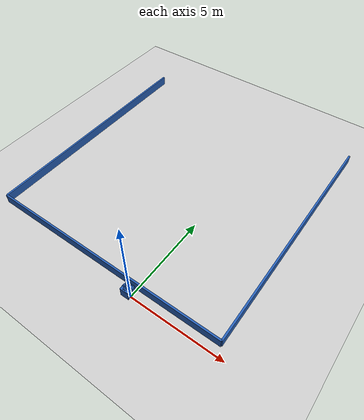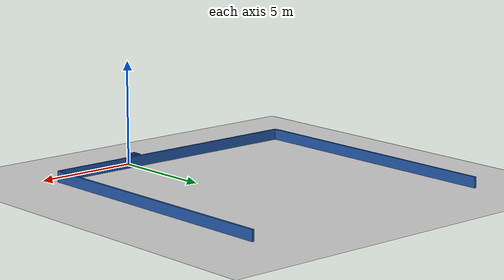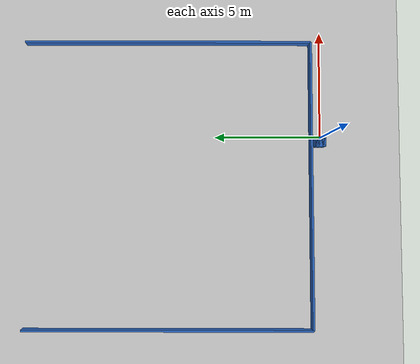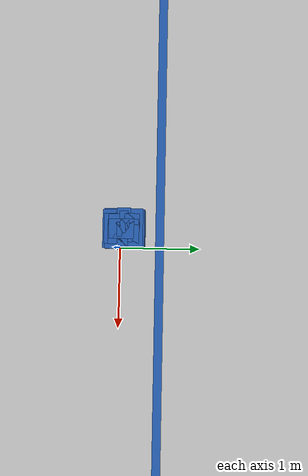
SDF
<?xml version="1.0" ?>
    <sdf version="1.5">
      <world name="default">
        <!-- A global light source -->
        <include>
          <uri>model://sun</uri>
        </include>
        <!-- A ground plane -->
        <include>
          <uri>model://ground_plane</uri>
        </include>

    <model name='libopen_space_final_T2B_79_14'>
      <static>1</static>
      <pose frame=''>-0.225000 0.075000 0.000000 0.000000 0.000000 0.000000</pose>
      <link name='link'>
        <inertial>
          <mass>1</mass>
          <inertia>
            <ixx>0.145833</ixx>
            <ixy>0</ixy>
            <ixz>0</ixz>
            <iyy>0.145833</iyy>
            <iyz>0</iyz>
            <izz>0.125</izz>
          </inertia>
        </inertial>
        <collision name='collision'>
          <geometry>
            <box>
              <size>0.45 0.49 1</size>
            </box>
          </geometry>
          <max_contacts>10</max_contacts>
          <surface>
            <contact>
              <ode/>
            </contact>
            <bounce/>
            <friction>
              <torsional>
                <ode/>
              </torsional>
              <ode/>
            </friction>
          </surface>
        </collision>
        <visual name='visual'>
          <geometry>
            <box>
              <size>0.45 0.49 1</size>
            </box>
          </geometry>
	    <material>
              <ambient>0.152000 0.379000 0.720000 1</ambient>
	      <diffuse>0.152000 0.379000 0.720000 1</diffuse>
          </material>
          <material>
            <script>
              <name>Gazebo/Grey</name>
              <uri>file://media/materials/scripts/gazebo.material</uri>
            </script>
          </material>
        </visual>
        <self_collide>0</self_collide>
        <kinematic>0</kinematic>
        <gravity>1</gravity>
      </link>
      <plugin name='libopen_space_final_T2B_79_14' filename='libopen_space_final_T2B_79_14.so'/>
    </model>

    <model name='libopen_space_final_T2B_99_64'>
      <static>1</static>
      <pose frame=''>-0.225000 0.075000 0.000000 0.000000 0.000000 0.000000</pose>
      <link name='link'>
        <inertial>
          <mass>1</mass>
          <inertia>
            <ixx>0.145833</ixx>
            <ixy>0</ixy>
            <ixz>0</ixz>
            <iyy>0.145833</iyy>
            <iyz>0</iyz>
            <izz>0.125</izz>
          </inertia>
        </inertial>
        <collision name='collision'>
          <geometry>
            <box>
              <size>0.23 0.35 1</size>
            </box>
          </geometry>
          <max_contacts>10</max_contacts>
          <surface>
            <contact>
              <ode/>
            </contact>
            <bounce/>
            <friction>
              <torsional>
                <ode/>
              </torsional>
              <ode/>
            </friction>
          </surface>
        </collision>
        <visual name='visual'>
          <geometry>
            <box>
              <size>0.23 0.35 1</size>
            </box>
          </geometry>
	    <material>
              <ambient>0.152000 0.379000 0.720000 1</ambient>
	      <diffuse>0.152000 0.379000 0.720000 1</diffuse>
          </material>
          <material>
            <script>
              <name>Gazebo/Grey</name>
              <uri>file://media/materials/scripts/gazebo.material</uri>
            </script>
          </material>
        </visual>
        <self_collide>0</self_collide>
        <kinematic>0</kinematic>
        <gravity>1</gravity>
      </link>
      <plugin name='libopen_space_final_T2B_99_64' filename='libopen_space_final_T2B_99_64.so'/>
    </model>

    <model name='libopen_space_final_T2B_55_44'>
      <static>1</static>
      <pose frame=''>-0.225000 0.075000 0.000000 0.000000 0.000000 0.000000</pose>
      <link name='link'>
        <inertial>
          <mass>1</mass>
          <inertia>
            <ixx>0.145833</ixx>
            <ixy>0</ixy>
            <ixz>0</ixz>
            <iyy>0.145833</iyy>
            <iyz>0</iyz>
            <izz>0.125</izz>
          </inertia>
        </inertial>
        <collision name='collision'>
          <geometry>
            <box>
              <size>0.47 0.45 1</size>
            </box>
          </geometry>
          <max_contacts>10</max_contacts>
          <surface>
            <contact>
              <ode/>
            </contact>
            <bounce/>
            <friction>
              <torsional>
                <ode/>
              </torsional>
              <ode/>
            </friction>
          </surface>
        </collision>
        <visual name='visual'>
          <geometry>
            <box>
              <size>0.47 0.45 1</size>
            </box>
          </geometry>
	    <material>
              <ambient>0.152000 0.379000 0.720000 1</ambient>
	      <diffuse>0.152000 0.379000 0.720000 1</diffuse>
          </material>
          <material>
            <script>
              <name>Gazebo/Grey</name>
              <uri>file://media/materials/scripts/gazebo.material</uri>
            </script>
          </material>
        </visual>
        <self_collide>0</self_collide>
        <kinematic>0</kinematic>
        <gravity>1</gravity>
      </link>
      <plugin name='libopen_space_final_T2B_55_44' filename='libopen_space_final_T2B_55_44.so'/>
    </model>

    <model name='libopen_space_final_T2B_125_48'>
      <static>1</static>
      <pose frame=''>-0.225000 0.075000 0.000000 0.000000 0.000000 0.000000</pose>
      <link name='link'>
        <inertial>
          <mass>1</mass>
          <inertia>
            <ixx>0.145833</ixx>
            <ixy>0</ixy>
            <ixz>0</ixz>
            <iyy>0.145833</iyy>
            <iyz>0</iyz>
            <izz>0.125</izz>
          </inertia>
        </inertial>
        <collision name='collision'>
          <geometry>
            <box>
              <size>0.35 0.46 1</size>
            </box>
          </geometry>
          <max_contacts>10</max_contacts>
          <surface>
            <contact>
              <ode/>
            </contact>
            <bounce/>
            <friction>
              <torsional>
                <ode/>
              </torsional>
              <ode/>
            </friction>
          </surface>
        </collision>
        <visual name='visual'>
          <geometry>
            <box>
              <size>0.35 0.46 1</size>
            </box>
          </geometry>
	    <material>
              <ambient>0.152000 0.379000 0.720000 1</ambient>
	      <diffuse>0.152000 0.379000 0.720000 1</diffuse>
          </material>
          <material>
            <script>
              <name>Gazebo/Grey</name>
              <uri>file://media/materials/scripts/gazebo.material</uri>
            </script>
          </material>
        </visual>
        <self_collide>0</self_collide>
        <kinematic>0</kinematic>
        <gravity>1</gravity>
      </link>
      <plugin name='libopen_space_final_T2B_125_48' filename='libopen_space_final_T2B_125_48.so'/>
    </model>

    <model name='libopen_space_final_T2B_118_50'>
      <static>1</static>
      <pose frame=''>-0.225000 0.075000 0.000000 0.000000 0.000000 0.000000</pose>
      <link name='link'>
        <inertial>
          <mass>1</mass>
          <inertia>
            <ixx>0.145833</ixx>
            <ixy>0</ixy>
            <ixz>0</ixz>
            <iyy>0.145833</iyy>
            <iyz>0</iyz>
            <izz>0.125</izz>
          </inertia>
        </inertial>
        <collision name='collision'>
          <geometry>
            <box>
              <size>0.49 0.16 1</size>
            </box>
          </geometry>
          <max_contacts>10</max_contacts>
          <surface>
            <contact>
              <ode/>
            </contact>
            <bounce/>
            <friction>
              <torsional>
                <ode/>
              </torsional>
              <ode/>
            </friction>
          </surface>
        </collision>
        <visual name='visual'>
          <geometry>
            <box>
              <size>0.49 0.16 1</size>
            </box>
          </geometry>
	    <material>
              <ambient>0.152000 0.379000 0.720000 1</ambient>
	      <diffuse>0.152000 0.379000 0.720000 1</diffuse>
          </material>
          <material>
            <script>
              <name>Gazebo/Grey</name>
              <uri>file://media/materials/scripts/gazebo.material</uri>
            </script>
          </material>
        </visual>
        <self_collide>0</self_collide>
        <kinematic>0</kinematic>
        <gravity>1</gravity>
      </link>
      <plugin name='libopen_space_final_T2B_118_50' filename='libopen_space_final_T2B_118_50.so'/>
    </model>

    <model name='libopen_space_final_T2B_147_27'>
      <static>1</static>
      <pose frame=''>-0.225000 0.075000 0.000000 0.000000 0.000000 0.000000</pose>
      <link name='link'>
        <inertial>
          <mass>1</mass>
          <inertia>
            <ixx>0.145833</ixx>
            <ixy>0</ixy>
            <ixz>0</ixz>
            <iyy>0.145833</iyy>
            <iyz>0</iyz>
            <izz>0.125</izz>
          </inertia>
        </inertial>
        <collision name='collision'>
          <geometry>
            <box>
              <size>0.36 0.37 1</size>
            </box>
          </geometry>
          <max_contacts>10</max_contacts>
          <surface>
            <contact>
              <ode/>
            </contact>
            <bounce/>
            <friction>
              <torsional>
                <ode/>
              </torsional>
              <ode/>
            </friction>
          </surface>
        </collision>
        <visual name='visual'>
          <geometry>
            <box>
              <size>0.36 0.37 1</size>
            </box>
          </geometry>
	    <material>
              <ambient>0.152000 0.379000 0.720000 1</ambient>
	      <diffuse>0.152000 0.379000 0.720000 1</diffuse>
          </material>
          <material>
            <script>
              <name>Gazebo/Grey</name>
              <uri>file://media/materials/scripts/gazebo.material</uri>
            </script>
          </material>
        </visual>
        <self_collide>0</self_collide>
        <kinematic>0</kinematic>
        <gravity>1</gravity>
      </link>
      <plugin name='libopen_space_final_T2B_147_27' filename='libopen_space_final_T2B_147_27.so'/>
    </model>

    <model name='libopen_space_final_T2B_120_90'>
      <static>1</static>
      <pose frame=''>-0.225000 0.075000 0.000000 0.000000 0.000000 0.000000</pose>
      <link name='link'>
        <inertial>
          <mass>1</mass>
          <inertia>
            <ixx>0.145833</ixx>
            <ixy>0</ixy>
            <ixz>0</ixz>
            <iyy>0.145833</iyy>
            <iyz>0</iyz>
            <izz>0.125</izz>
          </inertia>
        </inertial>
        <collision name='collision'>
          <geometry>
            <box>
              <size>0.18 0.16 1</size>
            </box>
          </geometry>
          <max_contacts>10</max_contacts>
          <surface>
            <contact>
              <ode/>
            </contact>
            <bounce/>
            <friction>
              <torsional>
                <ode/>
              </torsional>
              <ode/>
            </friction>
          </surface>
        </collision>
        <visual name='visual'>
          <geometry>
            <box>
              <size>0.18 0.16 1</size>
            </box>
          </geometry>
	    <material>
              <ambient>0.152000 0.379000 0.720000 1</ambient>
	      <diffuse>0.152000 0.379000 0.720000 1</diffuse>
          </material>
          <material>
            <script>
              <name>Gazebo/Grey</name>
              <uri>file://media/materials/scripts/gazebo.material</uri>
            </script>
          </material>
        </visual>
        <self_collide>0</self_collide>
        <kinematic>0</kinematic>
        <gravity>1</gravity>
      </link>
      <plugin name='libopen_space_final_T2B_120_90' filename='libopen_space_final_T2B_120_90.so'/>
    </model>

    <model name='libopen_space_final_T2B_134_32'>
      <static>1</static>
      <pose frame=''>-0.225000 0.075000 0.000000 0.000000 0.000000 0.000000</pose>
      <link name='link'>
        <inertial>
          <mass>1</mass>
          <inertia>
            <ixx>0.145833</ixx>
            <ixy>0</ixy>
            <ixz>0</ixz>
            <iyy>0.145833</iyy>
            <iyz>0</iyz>
            <izz>0.125</izz>
          </inertia>
        </inertial>
        <collision name='collision'>
          <geometry>
            <box>
              <size>0.42 0.10 1</size>
            </box>
          </geometry>
          <max_contacts>10</max_contacts>
          <surface>
            <contact>
              <ode/>
            </contact>
            <bounce/>
            <friction>
              <torsional>
                <ode/>
              </torsional>
              <ode/>
            </friction>
          </surface>
        </collision>
        <visual name='visual'>
          <geometry>
            <box>
              <size>0.42 0.10 1</size>
            </box>
          </geometry>
	    <material>
              <ambient>0.152000 0.379000 0.720000 1</ambient>
	      <diffuse>0.152000 0.379000 0.720000 1</diffuse>
          </material>
          <material>
            <script>
              <name>Gazebo/Grey</name>
              <uri>file://media/materials/scripts/gazebo.material</uri>
            </script>
          </material>
        </visual>
        <self_collide>0</self_collide>
        <kinematic>0</kinematic>
        <gravity>1</gravity>
      </link>
      <plugin name='libopen_space_final_T2B_134_32' filename='libopen_space_final_T2B_134_32.so'/>
    </model>

    <model name='libopen_space_final_T2B_125_59'>
      <static>1</static>
      <pose frame=''>-0.225000 0.075000 0.000000 0.000000 0.000000 0.000000</pose>
      <link name='link'>
        <inertial>
          <mass>1</mass>
          <inertia>
            <ixx>0.145833</ixx>
            <ixy>0</ixy>
            <ixz>0</ixz>
            <iyy>0.145833</iyy>
            <iyz>0</iyz>
            <izz>0.125</izz>
          </inertia>
        </inertial>
        <collision name='collision'>
          <geometry>
            <box>
              <size>0.35 0.36 1</size>
            </box>
          </geometry>
          <max_contacts>10</max_contacts>
          <surface>
            <contact>
              <ode/>
            </contact>
            <bounce/>
            <friction>
              <torsional>
                <ode/>
              </torsional>
              <ode/>
            </friction>
          </surface>
        </collision>
        <visual name='visual'>
          <geometry>
            <box>
              <size>0.35 0.36 1</size>
            </box>
          </geometry>
	    <material>
              <ambient>0.152000 0.379000 0.720000 1</ambient>
	      <diffuse>0.152000 0.379000 0.720000 1</diffuse>
          </material>
          <material>
            <script>
              <name>Gazebo/Grey</name>
              <uri>file://media/materials/scripts/gazebo.material</uri>
            </script>
          </material>
        </visual>
        <self_collide>0</self_collide>
        <kinematic>0</kinematic>
        <gravity>1</gravity>
      </link>
      <plugin name='libopen_space_final_T2B_125_59' filename='libopen_space_final_T2B_125_59.so'/>
    </model>

    <model name='libopen_space_final_T2B_77_65'>
      <static>1</static>
      <pose frame=''>-0.225000 0.075000 0.000000 0.000000 0.000000 0.000000</pose>
      <link name='link'>
        <inertial>
          <mass>1</mass>
          <inertia>
            <ixx>0.145833</ixx>
            <ixy>0</ixy>
            <ixz>0</ixz>
            <iyy>0.145833</iyy>
            <iyz>0</iyz>
            <izz>0.125</izz>
          </inertia>
        </inertial>
        <collision name='collision'>
          <geometry>
            <box>
              <size>0.35 0.39 1</size>
            </box>
          </geometry>
          <max_contacts>10</max_contacts>
          <surface>
            <contact>
              <ode/>
            </contact>
            <bounce/>
            <friction>
              <torsional>
                <ode/>
              </torsional>
              <ode/>
            </friction>
          </surface>
        </collision>
        <visual name='visual'>
          <geometry>
            <box>
              <size>0.35 0.39 1</size>
            </box>
          </geometry>
	    <material>
              <ambient>0.152000 0.379000 0.720000 1</ambient>
	      <diffuse>0.152000 0.379000 0.720000 1</diffuse>
          </material>
          <material>
            <script>
              <name>Gazebo/Grey</name>
              <uri>file://media/materials/scripts/gazebo.material</uri>
            </script>
          </material>
        </visual>
        <self_collide>0</self_collide>
        <kinematic>0</kinematic>
        <gravity>1</gravity>
      </link>
      <plugin name='libopen_space_final_T2B_77_65' filename='libopen_space_final_T2B_77_65.so'/>
    </model>

    <model name='libopen_space_final_T2B_127_53'>
      <static>1</static>
      <pose frame=''>-0.225000 0.075000 0.000000 0.000000 0.000000 0.000000</pose>
      <link name='link'>
        <inertial>
          <mass>1</mass>
          <inertia>
            <ixx>0.145833</ixx>
            <ixy>0</ixy>
            <ixz>0</ixz>
            <iyy>0.145833</iyy>
            <iyz>0</iyz>
            <izz>0.125</izz>
          </inertia>
        </inertial>
        <collision name='collision'>
          <geometry>
            <box>
              <size>0.31 0.21 1</size>
            </box>
          </geometry>
          <max_contacts>10</max_contacts>
          <surface>
            <contact>
              <ode/>
            </contact>
            <bounce/>
            <friction>
              <torsional>
                <ode/>
              </torsional>
              <ode/>
            </friction>
          </surface>
        </collision>
        <visual name='visual'>
          <geometry>
            <box>
              <size>0.31 0.21 1</size>
            </box>
          </geometry>
	    <material>
              <ambient>0.152000 0.379000 0.720000 1</ambient>
	      <diffuse>0.152000 0.379000 0.720000 1</diffuse>
          </material>
          <material>
            <script>
              <name>Gazebo/Grey</name>
              <uri>file://media/materials/scripts/gazebo.material</uri>
            </script>
          </material>
        </visual>
        <self_collide>0</self_collide>
        <kinematic>0</kinematic>
        <gravity>1</gravity>
      </link>
      <plugin name='libopen_space_final_T2B_127_53' filename='libopen_space_final_T2B_127_53.so'/>
    </model>

    <model name='libopen_space_final_T2B_125_67'>
      <static>1</static>
      <pose frame=''>-0.225000 0.075000 0.000000 0.000000 0.000000 0.000000</pose>
      <link name='link'>
        <inertial>
          <mass>1</mass>
          <inertia>
            <ixx>0.145833</ixx>
            <ixy>0</ixy>
            <ixz>0</ixz>
            <iyy>0.145833</iyy>
            <iyz>0</iyz>
            <izz>0.125</izz>
          </inertia>
        </inertial>
        <collision name='collision'>
          <geometry>
            <box>
              <size>0.23 0.24 1</size>
            </box>
          </geometry>
          <max_contacts>10</max_contacts>
          <surface>
            <contact>
              <ode/>
            </contact>
            <bounce/>
            <friction>
              <torsional>
                <ode/>
              </torsional>
              <ode/>
            </friction>
          </surface>
        </collision>
        <visual name='visual'>
          <geometry>
            <box>
              <size>0.23 0.24 1</size>
            </box>
          </geometry>
	    <material>
              <ambient>0.152000 0.379000 0.720000 1</ambient>
	      <diffuse>0.152000 0.379000 0.720000 1</diffuse>
          </material>
          <material>
            <script>
              <name>Gazebo/Grey</name>
              <uri>file://media/materials/scripts/gazebo.material</uri>
            </script>
          </material>
        </visual>
        <self_collide>0</self_collide>
        <kinematic>0</kinematic>
        <gravity>1</gravity>
      </link>
      <plugin name='libopen_space_final_T2B_125_67' filename='libopen_space_final_T2B_125_67.so'/>
    </model>

    <model name='libopen_space_final_T2B_115_24'>
      <static>1</static>
      <pose frame=''>-0.225000 0.075000 0.000000 0.000000 0.000000 0.000000</pose>
      <link name='link'>
        <inertial>
          <mass>1</mass>
          <inertia>
            <ixx>0.145833</ixx>
            <ixy>0</ixy>
            <ixz>0</ixz>
            <iyy>0.145833</iyy>
            <iyz>0</iyz>
            <izz>0.125</izz>
          </inertia>
        </inertial>
        <collision name='collision'>
          <geometry>
            <box>
              <size>0.14 0.31 1</size>
            </box>
          </geometry>
          <max_contacts>10</max_contacts>
          <surface>
            <contact>
              <ode/>
            </contact>
            <bounce/>
            <friction>
              <torsional>
                <ode/>
              </torsional>
              <ode/>
            </friction>
          </surface>
        </collision>
        <visual name='visual'>
          <geometry>
            <box>
              <size>0.14 0.31 1</size>
            </box>
          </geometry>
	    <material>
              <ambient>0.152000 0.379000 0.720000 1</ambient>
	      <diffuse>0.152000 0.379000 0.720000 1</diffuse>
          </material>
          <material>
            <script>
              <name>Gazebo/Grey</name>
              <uri>file://media/materials/scripts/gazebo.material</uri>
            </script>
          </material>
        </visual>
        <self_collide>0</self_collide>
        <kinematic>0</kinematic>
        <gravity>1</gravity>
      </link>
      <plugin name='libopen_space_final_T2B_115_24' filename='libopen_space_final_T2B_115_24.so'/>
    </model>

    <model name='libopen_space_final_T2B_52_73'>
      <static>1</static>
      <pose frame=''>-0.225000 0.075000 0.000000 0.000000 0.000000 0.000000</pose>
      <link name='link'>
        <inertial>
          <mass>1</mass>
          <inertia>
            <ixx>0.145833</ixx>
            <ixy>0</ixy>
            <ixz>0</ixz>
            <iyy>0.145833</iyy>
            <iyz>0</iyz>
            <izz>0.125</izz>
          </inertia>
        </inertial>
        <collision name='collision'>
          <geometry>
            <box>
              <size>0.20 0.13 1</size>
            </box>
          </geometry>
          <max_contacts>10</max_contacts>
          <surface>
            <contact>
              <ode/>
            </contact>
            <bounce/>
            <friction>
              <torsional>
                <ode/>
              </torsional>
              <ode/>
            </friction>
          </surface>
        </collision>
        <visual name='visual'>
          <geometry>
            <box>
              <size>0.20 0.13 1</size>
            </box>
          </geometry>
	    <material>
              <ambient>0.152000 0.379000 0.720000 1</ambient>
	      <diffuse>0.152000 0.379000 0.720000 1</diffuse>
          </material>
          <material>
            <script>
              <name>Gazebo/Grey</name>
              <uri>file://media/materials/scripts/gazebo.material</uri>
            </script>
          </material>
        </visual>
        <self_collide>0</self_collide>
        <kinematic>0</kinematic>
        <gravity>1</gravity>
      </link>
      <plugin name='libopen_space_final_T2B_52_73' filename='libopen_space_final_T2B_52_73.so'/>
    </model>

        <model name='bottom_wall'>
          <static>1</static>
          <pose frame=''>-2.25 0.5 0.000000 0.000000 0.000000 1.57079632</pose>
          <link name='link'>
            <inertial>
            <mass>1</mass>
            <inertia>
              <ixx>0.145833</ixx>
              <ixy>0</ixy>
              <ixz>0</ixz>
              <iyy>0.145833</iyy>
              <iyz>0</iyz>
              <izz>0.125</izz>
            </inertia>
            </inertial>
            <collision name='collision'>
            <geometry>
              <box>
              <size>0.1 13.5 1</size>
              </box>
            </geometry>
            <max_contacts>10</max_contacts>
            <surface>
              <contact>
              <ode/>
              </contact>
              <bounce/>
              <friction>
              <torsional>
                <ode/>
              </torsional>
              <ode/>
              </friction>
            </surface>
            </collision>
            <visual name='visual'>
            <geometry>
              <box>
              <size>0.1 13.5 1</size>
              </box>
            </geometry>
            <material>
              <ambient>0.152000 0.379000 0.720000 1</ambient>
            <diffuse>0.152000 0.379000 0.720000 1</diffuse>
            </material>
            <material>
              <script>
              <name>Gazebo/Grey</name>
              <uri>file://media/materials/scripts/gazebo.material</uri>
              </script>
            </material>
            </visual>
            <self_collide>0</self_collide>
            <kinematic>0</kinematic>
            <gravity>1</gravity>
          </link>
        </model>

        <model name='left_wall'>
          <static>1</static>
          <pose frame=''>-9 7.25 0.000000 0.000000 0.000000 0.000000</pose>
          <link name='link'>
            <inertial>
            <mass>1</mass>
            <inertia>
              <ixx>0.145833</ixx>
              <ixy>0</ixy>
              <ixz>0</ixz>
              <iyy>0.145833</iyy>
              <iyz>0</iyz>
              <izz>0.125</izz>
            </inertia>
            </inertial>
            <collision name='collision'>
            <geometry>
              <box>
              <size>0.1 13.5 1</size>
              </box>
            </geometry>
            <max_contacts>10</max_contacts>
            <surface>
              <contact>
              <ode/>
              </contact>
              <bounce/>
              <friction>
              <torsional>
                <ode/>
              </torsional>
              <ode/>
              </friction>
            </surface>
            </collision>
            <visual name='visual'>
            <geometry>
              <box>
              <size>0.1 13.5 1</size>
              </box>
            </geometry>
            <material>
              <ambient>0.152000 0.379000 0.720000 1</ambient>
            <diffuse>0.152000 0.379000 0.720000 1</diffuse>
            </material>
            <material>
              <script>
              <name>Gazebo/Grey</name>
              <uri>file://media/materials/scripts/gazebo.material</uri>
              </script>
            </material>
            </visual>
            <self_collide>0</self_collide>
            <kinematic>0</kinematic>
            <gravity>1</gravity>
          </link>
        </model>

        <model name='right_wall'>
          <static>1</static>
          <pose frame=''>4.5 7.25 0.000000 0.000000 0.000000 0.000000</pose>
          <link name='link'>
            <inertial>
            <mass>1</mass>
            <inertia>
              <ixx>0.145833</ixx>
              <ixy>0</ixy>
              <ixz>0</ixz>
              <iyy>0.145833</iyy>
              <iyz>0</iyz>
              <izz>0.125</izz>
            </inertia>
            </inertial>
            <collision name='collision'>
            <geometry>
              <box>
              <size>0.1 13.5 1</size>
              </box>
            </geometry>
            <max_contacts>10</max_contacts>
            <surface>
              <contact>
              <ode/>
              </contact>
              <bounce/>
              <friction>
              <torsional>
                <ode/>
              </torsional>
              <ode/>
              </friction>
            </surface>
            </collision>
            <visual name='visual'>
            <geometry>
              <box>
              <size>0.1 13.5 1</size>
              </box>
            </geometry>
            <material>
              <ambient>0.152000 0.379000 0.720000 1</ambient>
            <diffuse>0.152000 0.379000 0.720000 1</diffuse>
            </material>
            <material>
              <script>
              <name>Gazebo/Grey</name>
              <uri>file://media/materials/scripts/gazebo.material</uri>
              </script>
            </material>
            </visual>
            <self_collide>0</self_collide>
            <kinematic>0</kinematic>
            <gravity>1</gravity>
          </link>
        </model>

      </world>
    </sdf>"
